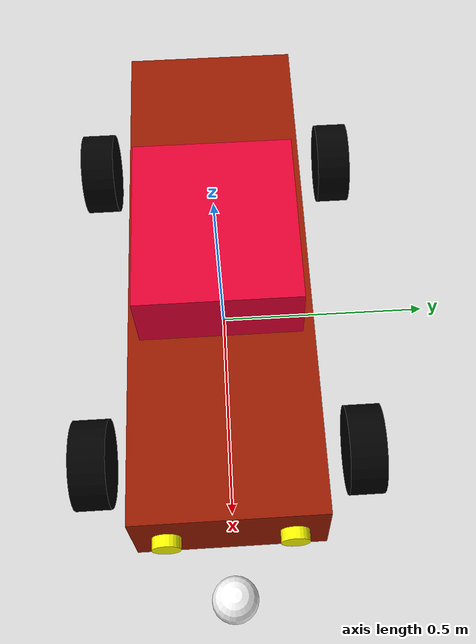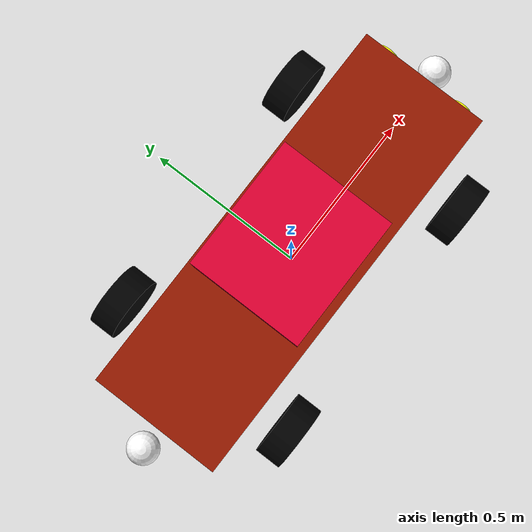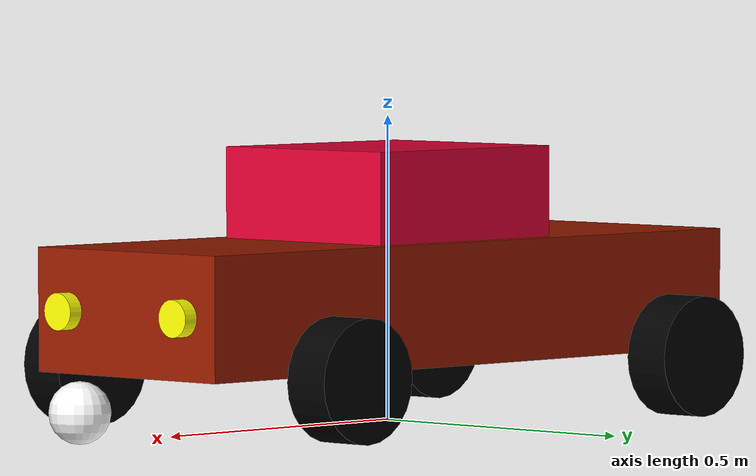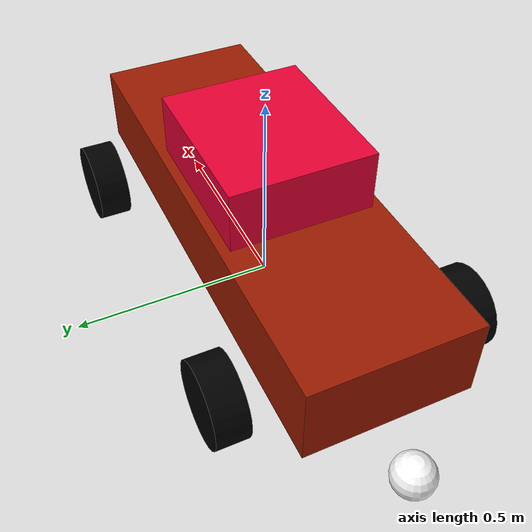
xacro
<?xml version="1.0"?>
<robot name="my_unique_robot" xmlns:xacro="http://ros.org/wiki/xacro">

  <!-- ====================== КОНСТАНТЫ ====================== -->
  <xacro:property name="wheel_radius" value="0.1"/>
  <xacro:property name="wheel_width"  value="0.08"/>
  <xacro:property name="base_size_x" value="1.2"/>
  <xacro:property name="base_size_y" value="0.4"/>
  <xacro:property name="base_height" value="0.2"/>
  <xacro:property name="upper_size_x" value="0.4"/>
  <xacro:property name="upper_size_y" value="0.35"/>
  <xacro:property name="upper_height" value="0.15"/>
  <xacro:property name="caster_radius" value="0.05"/>
  <xacro:property name="wheel_offset_y" value="0.3"/>
  <xacro:property name="front_wheel_offset_x" value="0.4"/>
  <xacro:property name="rear_wheel_offset_x" value="-0.4"/>
  <xacro:property name="headlight_radius" value="0.03"/>
  <xacro:property name="headlight_length" value="0.05"/>
  <xacro:property name="headlight_offset_y" value="0.13"/>
  <xacro:property name="caster_offset_x" value="0.70"/>

  <!-- ====================== МАТЕРИАЛЫ ====================== -->
  <material name="blue"><color rgba="0 0 0.8 1"/></material>
  <material name="black"><color rgba="0 0 0 1"/></material>
  <material name="white"><color rgba="1 1 1 1"/></material>
  <material name="red_down"><color rgba="0.6 0.1 0 1"/></material>
  <material name="red_up"><color rgba="0.9 0 0.2 1"/></material>
  <material name="yellow"><color rgba="1 1 0 1"/></material>
  <material name="green"><color rgba="0 1 0 1"/></material>

  <!-- ====================== МАКРОС ДЛЯ КОЛЕСА ====================== -->
  <xacro:macro name="wheel" params="name reflect_y offset_x">
    <link name="${name}_wheel">
      <visual>
        <origin xyz="0 0 0" rpy="1.5708 0 0"/>
        <geometry>
          <cylinder radius="${wheel_radius}" length="${wheel_width}"/>
        </geometry>
        <material name="black"/>
      </visual>
      <collision>
        <origin xyz="0 0 0" rpy="1.5708 0 0"/>
        <geometry>
          <cylinder radius="${wheel_radius}" length="${wheel_width}"/>
        </geometry>
      </collision>
      <inertial>
        <mass value="2.0"/>
        <inertia ixx="0.03" ixy="0" ixz="0" iyy="0.03" iyz="0" izz="0.01"/>
      </inertial>
    </link>
    <joint name="${name}_wheel_joint" type="continuous">
      <parent link="base_link"/>
      <child link="${name}_wheel"/>
      <origin xyz="${offset_x} ${reflect_y * wheel_offset_y} ${wheel_radius}" rpy="0 0 0"/>
      <axis xyz="0 1 0"/>
    </joint>
  </xacro:macro>

  <!-- ====================== МАКРОС ДЛЯ ФАРЫ ====================== -->
  <xacro:macro name="headlight" params="name reflect_y">
    <link name="${name}_headlight">
      <visual>
        <origin xyz="0 0 0" rpy="0 1.5708 0"/>
        <geometry>
          <cylinder radius="${headlight_radius}" length="${headlight_length}"/>
        </geometry>
        <material name="yellow"/>
      </visual>
      <collision>
        <origin xyz="0 0 0" rpy="0 1.5708 0"/>
        <geometry>
          <cylinder radius="${headlight_radius}" length="${headlight_length}"/>
        </geometry>
      </collision>
      <inertial>
        <mass value="0.1"/>
        <inertia ixx="0.001" ixy="0" ixz="0" iyy="0.001" iyz="0" izz="0.0005"/>
      </inertial>
    </link>
    <joint name="${name}_headlight_joint" type="fixed">
      <parent link="base_link"/>
      <child link="${name}_headlight"/>
      <origin xyz="${base_size_x / 2} ${reflect_y * headlight_offset_y} ${base_height }" rpy="0 0 0"/>
    </joint>
  </xacro:macro>

  <!-- ====================== ОСНОВНОЙ КОРПУС ====================== -->
  <link name="base_link">
    <visual>
      <origin xyz="0 0 ${wheel_radius + base_height / 2}" rpy="0 0 0"/>
      <geometry>
        <box size="${base_size_x} ${base_size_y} ${base_height}"/>
      </geometry>
      <material name="red_down"/>
    </visual>
    <collision>
      <origin xyz="0 0 ${wheel_radius + base_height / 2}" rpy="0 0 0"/>
      <geometry>
        <box size="${base_size_x} ${base_size_y} ${base_height}"/>
      </geometry>
    </collision>
    <inertial>
      <mass value="15.0"/>
      <inertia ixx="1.0" ixy="0" ixz="0" iyy="1.0" iyz="0" izz="0.8"/>
    </inertial>
  </link>

  <!-- ====================== ВЕРХНИЙ ПРЯМОУГОЛЬНИК ====================== -->
  <link name="upper_body">
    <visual>
      <origin xyz="0 0 ${base_height}" rpy="0 0 0"/>
      <geometry>
        <box size="${upper_size_x} ${upper_size_y} ${upper_height}"/>
      </geometry>
      <material name="red_up"/>
    </visual>
    <collision>
      <origin xyz="0 0 ${upper_height / 2}" rpy="0 0 0"/>
      <geometry>
        <box size="${upper_size_x} ${upper_size_y} ${upper_height}"/>
      </geometry>
    </collision>
    <inertial>
      <mass value="5.0"/>
      <inertia ixx="0.4" ixy="0" ixz="0" iyy="0.4" iyz="0" izz="0.3"/>
    </inertial>
  </link>

  <joint name="upper_body_joint" type="fixed">
    <parent link="base_link"/>
    <child link="upper_body"/>
    <origin xyz="0 0 ${base_height / 2 + upper_height / 2}" rpy="0 0 0"/>
  </joint>

  <!-- ====================== КОЛЁСА ====================== -->
  <xacro:wheel name="front_left" reflect_y="1" offset_x="${front_wheel_offset_x}"/>
  <xacro:wheel name="front_right" reflect_y="-1" offset_x="${front_wheel_offset_x}"/>
  <xacro:wheel name="rear_left" reflect_y="1" offset_x="${rear_wheel_offset_x}"/>
  <xacro:wheel name="rear_right" reflect_y="-1" offset_x="${rear_wheel_offset_x}"/>

  <!-- ====================== ФАРЫ ====================== -->
  <xacro:headlight name="left" reflect_y="1"/>
  <xacro:headlight name="right" reflect_y="-1"/>

  <!-- ====================== КАСТЕРЫ ====================== -->
  <xacro:macro name="caster" params="name x">
    <link name="${name}">
      <visual>
        <geometry><sphere radius="${caster_radius}"/></geometry>
        <material name="white"/>
      </visual>
      <collision>
        <geometry><sphere radius="${caster_radius}"/></geometry>
      </collision>
      <inertial>
        <mass value="0.5"/>
        <inertia ixx="0.001" ixy="0" ixz="0" iyy="0.001" iyz="0" izz="0.001"/>
      </inertial>
    </link>
    <joint name="${name}_joint" type="fixed">
      <parent link="base_link"/>
      <child link="${name}"/>
      <origin xyz="${x} 0 ${caster_radius}"/>
    </joint>
  </xacro:macro>
  <xacro:caster name="caster_front" x="${caster_offset_x}"/>
  <xacro:caster name="caster_back"  x="-${caster_offset_x}"/>

  <!-- ====================== ЛИДАР ====================== -->
  <xacro:property name="lidar_radius" value="0.05"/>
  <xacro:property name="lidar_height" value="0.1"/>
  <xacro:property name="lidar_offset_z" value="0.2"/>

  <link name="lidar_link">
    <visual>
      <origin xyz="0 0 0" rpy="0 0 0"/>
      <geometry>
        <cylinder radius="${lidar_radius}" length="${lidar_height}"/>
      </geometry>
      <material name="blue"/>
    </visual>
    <inertial>
      <mass value="0.2"/>
      <inertia ixx="0.001" ixy="0" ixz="0" iyy="0.001" iyz="0" izz="0.0005"/>
    </inertial>
  </link>

  <joint name="lidar_joint" type="fixed">
    <parent link="upper_body"/>
    <child link="lidar_link"/>
    <origin xyz="0 0 ${lidar_offset_z}" rpy="0 0 0"/>
  </joint>

  <!-- ====================== КАМЕРА ГЛУБИНЫ ====================== -->
  <xacro:property name="depth_camera_offset_x" value="-0.15"/>
  <xacro:property name="depth_camera_offset_y" value="0.0"/>
  <xacro:property name="depth_camera_offset_z" value="0.1"/>

  <link name="depth_camera_link">
    <visual>
      <origin xyz="0 0 0" rpy="0 0 0"/>
      <geometry>
        <box size="0.08 0.05 0.04"/>
      </geometry>
      <material name="green"/>
    </visual>
    <inertial>
      <mass value="0.1"/>
      <inertia ixx="0.001" ixy="0" ixz="0" iyy="0.001" iyz="0" izz="0.001"/>
    </inertial>
  </link>

  <joint name="depth_camera_joint" type="fixed">
    <parent link="upper_body"/>
    <child link="depth_camera_link"/>
    <origin xyz="${depth_camera_offset_x} ${depth_camera_offset_y} ${depth_camera_offset_z}" rpy="0 0 0"/>
  </joint>

  <xacro:include filename="$(find my_unique_robot_gazebo)/config/robot.gazebo.xacro" />

  <!-- ====================== IMU СЕНСОР ====================== -->
  <xacro:property name="imu_offset_x" value="0.0"/>
  <xacro:property name="imu_offset_y" value="0.0"/>
  <xacro:property name="imu_offset_z" value="0.05"/>

  <link name="imu_link">
    <visual>
      <origin xyz="0 0 0" rpy="0 0 0"/>
      <geometry>
        <sphere radius="0.02"/>
      </geometry>
      <material name="blue"/>
    </visual>
    <inertial>
      <mass value="0.01"/>
      <inertia ixx="0.0001" ixy="0" ixz="0" iyy="0.0001" iyz="0" izz="0.0001"/>
    </inertial>
  </link>

  <joint name="imu_joint" type="fixed">
    <parent link="base_link"/>
    <child link="imu_link"/>
    <origin xyz="0 0 ${base_height + imu_offset_z}" rpy="0 0 0"/>
  </joint>

</robot>
